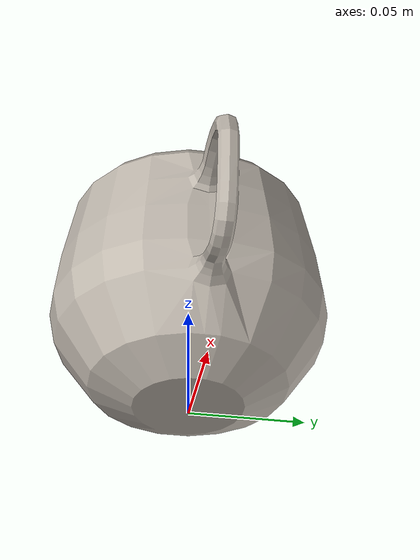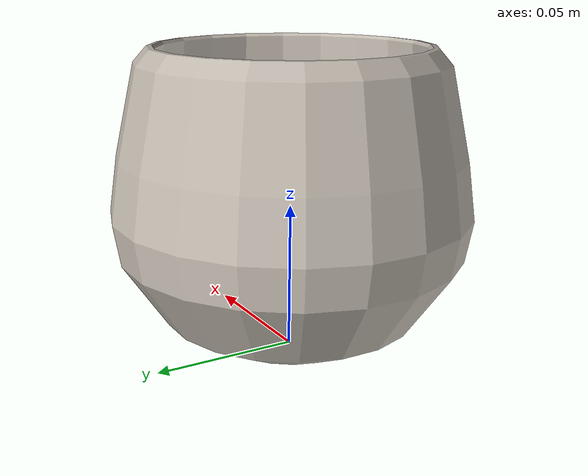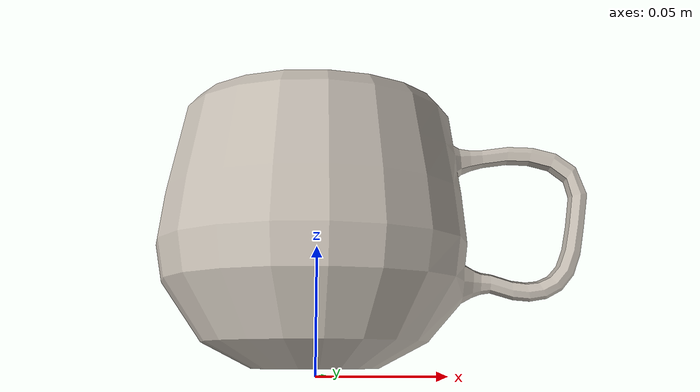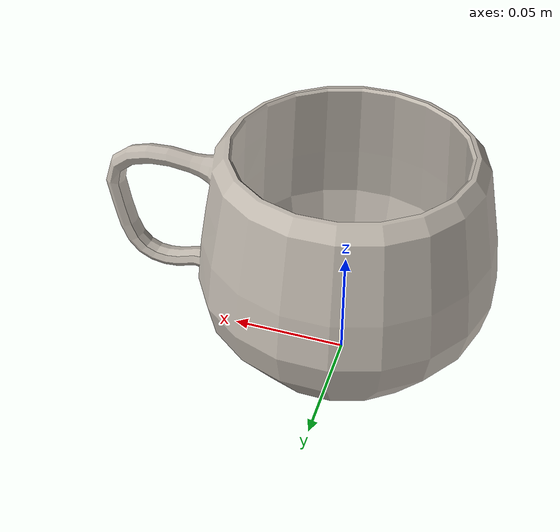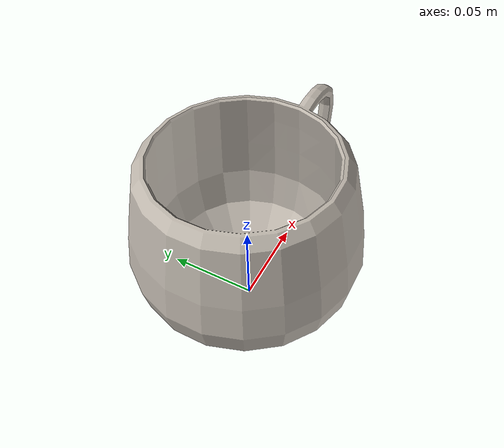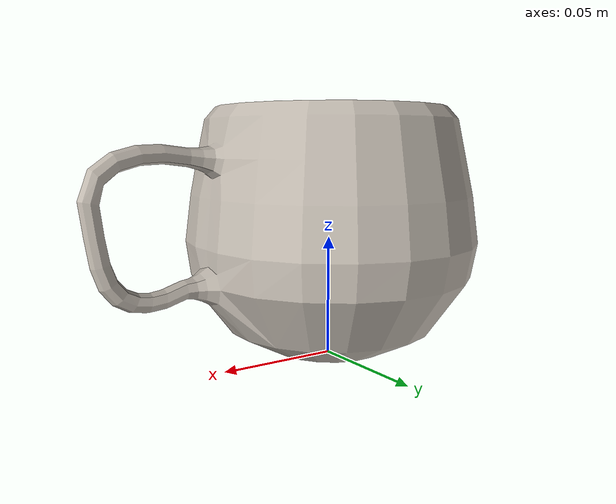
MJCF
<mujoco model="mug">
  <asset>
    <mesh file="meshes/mug_5.obj" name="mug_mesh" scale="1.0 1.0 1.0"/>
    <texture type="2d" file="../textures/Mug_5.png" name="tex-ceramic"/>
    <material name="ceramic" reflectance="0.3" texrepeat="3 3" texture="tex-ceramic" texuniform="true"/>
  </asset>
  <worldbody>
    <body>
      <body name="object">
        <geom pos="0 0 0" mesh="mug_mesh" type="mesh" solimp="0.998 0.998 0.001" solref="0.001 1" density="100" friction="0.95 0.3 0.1" material="ceramic" contype="0" conaffinity="0" group="1"/>
        <geom pos="0 0 0" mesh="mug_mesh" type="mesh" solimp="0.998 0.998 0.001" solref="0.001 1" density="100" friction="0.95 0.3 0.1" material="ceramic" group="0"/>
      </body>
      <site rgba="0 0 0 0" size="0.005" pos="0 0 0" name="bottom_site"/>
      <site rgba="0 0 0 0" size="0.005" pos="0 0.00 0.1" name="top_site"/>
      <site rgba="0 0 0 0" size="0.005" pos="0.08 0.06 0" name="horizontal_radius_site"/>
    </body>
  </worldbody>
</mujoco>
